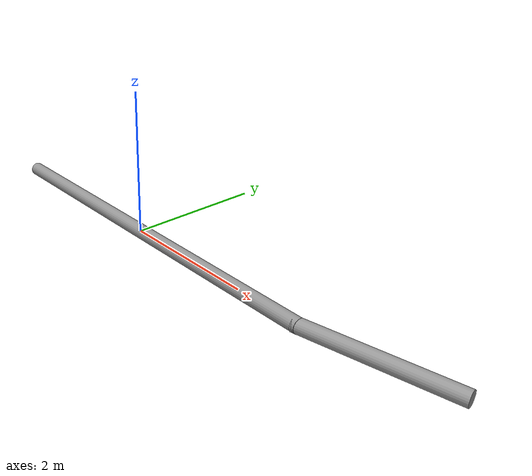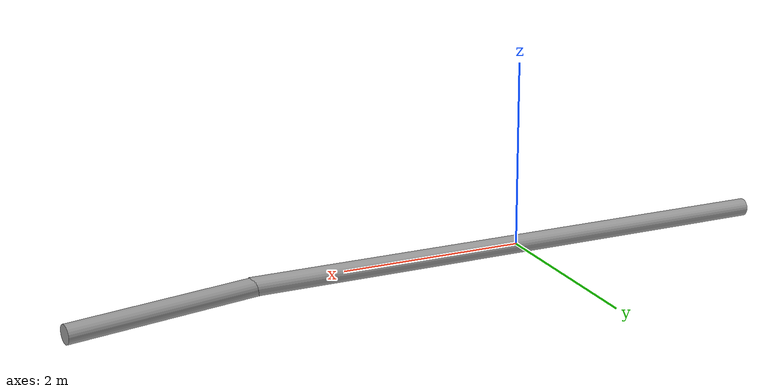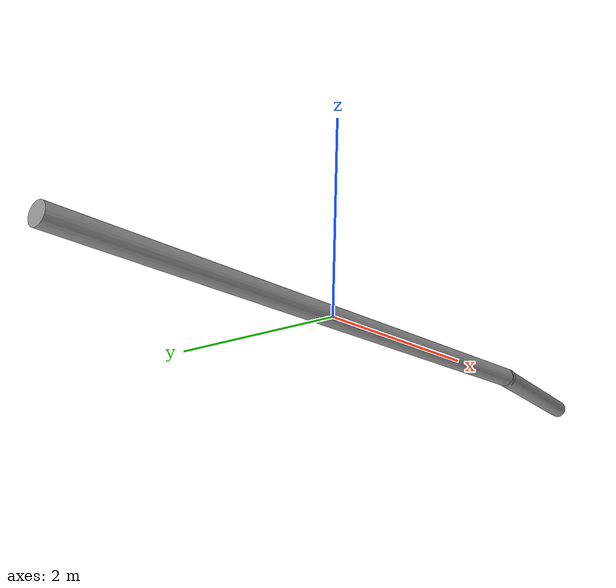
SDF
<?xml version='1.0'?>
<sdf version='1.7'>
  <model name='big_tube_with_angle'>
    <static>true</static>
    <link name='link'>
      <inertial>
        <mass>1</mass>
        <inertia>
          <ixx>0.145833</ixx>
          <ixy>0</ixy>
          <ixz>0</ixz>
          <iyy>0.145833</iyy>
          <iyz>0</iyz>
          <izz>0.125</izz>
        </inertia>
        <pose>0 0 0 0 -0 0</pose>
      </inertial>
      <self_collide>0</self_collide>
      <enable_wind>0</enable_wind>
      <kinematic>0</kinematic>
      <pose>0 0 0 0 -0 0</pose>
      <gravity>0</gravity>
      <visual name='visual'>
        <geometry>
          <cylinder>
            <radius>0.1</radius>
            <length>6</length>
          </cylinder>
        </geometry>
        <material>
          <script>
            <name>Gazebo/Grey</name>
            <uri>file://media/materials/scripts/gazebo.material</uri>
          </script>
          <shader type='pixel'>
            <normal_map>__default__</normal_map>
          </shader>
          <ambient>0.3 0.3 0.3 1</ambient>
          <diffuse>0.7 0.7 0.7 1</diffuse>
          <specular>0.01 0.01 0.01 1</specular>
          <emissive>0 0 0 1</emissive>
        </material>
        <pose>0 0 0 0 1.57 0</pose>
        <transparency>0</transparency>
        <cast_shadows>1</cast_shadows>
      </visual>
      <collision name='collision'>
        <laser_retro>0</laser_retro>
        <max_contacts>10</max_contacts>
        <pose>0 0 0 0 1.57 0</pose>
        <geometry>
          <cylinder>
            <radius>0.1</radius>
            <length>6</length>
          </cylinder>
        </geometry>
        <surface>
          <friction>
            <ode>
              <mu>1</mu>
              <mu2>1</mu2>
              <fdir1>0 0 0</fdir1>
              <slip1>0</slip1>
              <slip2>0</slip2>
            </ode>
            <torsional>
              <coefficient>1</coefficient>
              <patch_radius>0</patch_radius>
              <surface_radius>0</surface_radius>
              <use_patch_radius>1</use_patch_radius>
              <ode>
                <slip>0</slip>
              </ode>
            </torsional>
          </friction>
          <bounce>
            <restitution_coefficient>0</restitution_coefficient>
            <threshold>1e+06</threshold>
          </bounce>
          <contact>
            <collide_without_contact>0</collide_without_contact>
            <collide_without_contact_bitmask>1</collide_without_contact_bitmask>
            <collide_bitmask>1</collide_bitmask>
            <ode>
              <soft_cfm>0</soft_cfm>
              <soft_erp>0.2</soft_erp>
              <kp>1e+13</kp>
              <kd>1</kd>
              <max_vel>0.01</max_vel>
              <min_depth>0</min_depth>
            </ode>
            <bullet>
              <split_impulse>1</split_impulse>
              <split_impulse_penetration_threshold>-0.01</split_impulse_penetration_threshold>
              <soft_cfm>0</soft_cfm>
              <soft_erp>0.2</soft_erp>
              <kp>1e+13</kp>
              <kd>1</kd>
            </bullet>
          </contact>
        </surface>
      </collision>
    </link>
    <link name='link_clone'>
      <inertial>
        <mass>1</mass>
        <inertia>
          <ixx>0.145833</ixx>
          <ixy>0</ixy>
          <ixz>0</ixz>
          <iyy>0.145833</iyy>
          <iyz>0</iyz>
          <izz>0.125</izz>
        </inertia>
        <pose>0 0 0 0 -0 0</pose>
      </inertial>
      <self_collide>0</self_collide>
      <enable_wind>0</enable_wind>
      <kinematic>0</kinematic>
      <pose>3.90573 0.192289 -0.000267 1.8e-05 6.9e-05 -1.2e-05</pose>
      <gravity>0</gravity>
      <visual name='visual'>
        <geometry>
          <cylinder>
            <radius>0.1</radius>
            <length>2</length>
          </cylinder>
        </geometry>
        <material>
          <script>
            <name>Gazebo/Grey</name>
            <uri>file://media/materials/scripts/gazebo.material</uri>
          </script>
          <shader type='pixel'>
            <normal_map>__default__</normal_map>
          </shader>
          <ambient>0.3 0.3 0.3 1</ambient>
          <diffuse>0.7 0.7 0.7 1</diffuse>
          <specular>0.01 0.01 0.01 1</specular>
          <emissive>0 0 0 1</emissive>
        </material>
        <pose>0 0 0 1.1e-05 1.57 0.200011</pose>
        <transparency>0</transparency>
        <cast_shadows>1</cast_shadows>
      </visual>
      <collision name='collision'>
        <laser_retro>0</laser_retro>
        <max_contacts>10</max_contacts>
        <pose>0 0 0 0 1.57 0.2</pose>
        <geometry>
          <cylinder>
            <radius>0.1</radius>
            <length>2</length>
          </cylinder>
        </geometry>
        <surface>
          <friction>
            <ode>
              <mu>1</mu>
              <mu2>1</mu2>
              <fdir1>0 0 0</fdir1>
              <slip1>0</slip1>
              <slip2>0</slip2>
            </ode>
            <torsional>
              <coefficient>1</coefficient>
              <patch_radius>0</patch_radius>
              <surface_radius>0</surface_radius>
              <use_patch_radius>1</use_patch_radius>
              <ode>
                <slip>0</slip>
              </ode>
            </torsional>
          </friction>
          <bounce>
            <restitution_coefficient>0</restitution_coefficient>
            <threshold>1e+06</threshold>
          </bounce>
          <contact>
            <collide_without_contact>0</collide_without_contact>
            <collide_without_contact_bitmask>1</collide_without_contact_bitmask>
            <collide_bitmask>1</collide_bitmask>
            <ode>
              <soft_cfm>0</soft_cfm>
              <soft_erp>0.2</soft_erp>
              <kp>1e+13</kp>
              <kd>1</kd>
              <max_vel>0.01</max_vel>
              <min_depth>0</min_depth>
            </ode>
            <bullet>
              <split_impulse>1</split_impulse>
              <split_impulse_penetration_threshold>-0.01</split_impulse_penetration_threshold>
              <soft_cfm>0</soft_cfm>
              <soft_erp>0.2</soft_erp>
              <kp>1e+13</kp>
              <kd>1</kd>
            </bullet>
          </contact>
        </surface>
      </collision>
    </link>
    <static>0</static>
    <allow_auto_disable>1</allow_auto_disable>
  </model>
</sdf>
